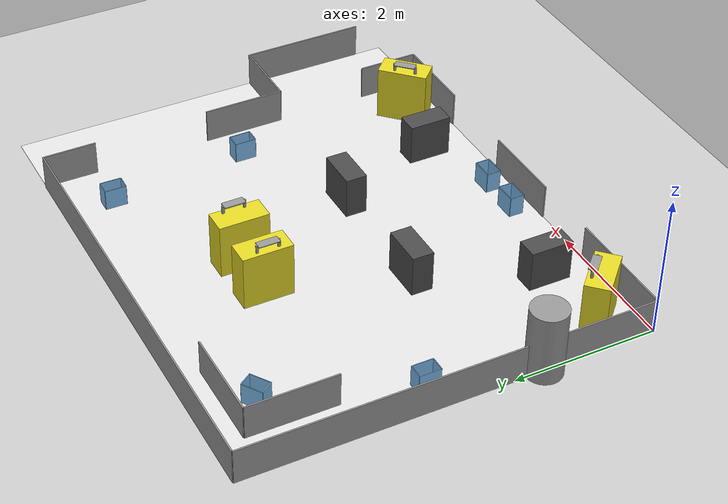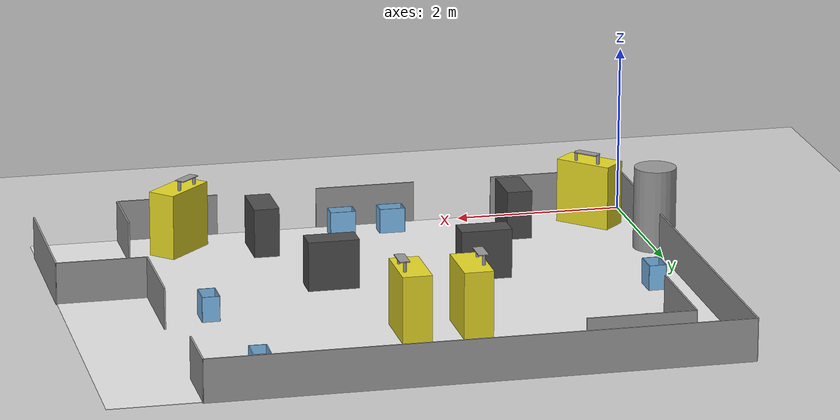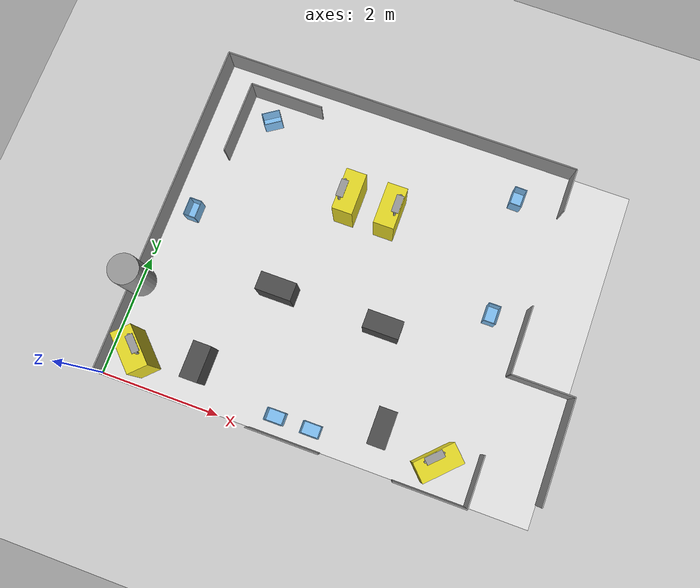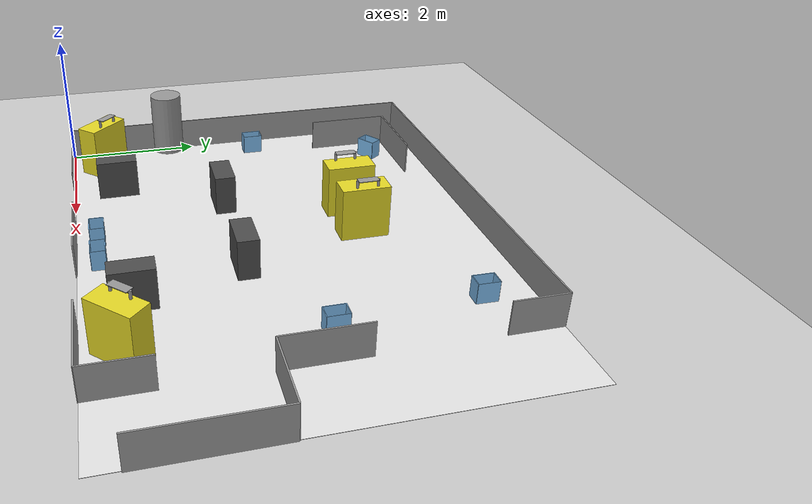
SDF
<sdf version="1.4">
 <world name="LLSF">
  <physics type="ode">
   <max_step_size>0.004</max_step_size>
   <real_time_factor>1</real_time_factor>
   <real_time_update_rate>300</real_time_update_rate>
  </physics>
  <scene><ambient>0.5 0.5 0.5 1.0</ambient><shadows>0</shadows></scene>
  <include><uri>model://ground_plane</uri></include>
  <include><uri>model://sun</uri></include>
  <light name="light" type="point">
   <cast_shadows>false</cast_shadows>
   <pose>0 3 5 0 0 0</pose>
   <diffuse>127 127 127 255</diffuse>
   <specular>25 25 25 255</specular>
   <attenuation>
    <range>20.0</range>
    <linear>0.01</linear>
    <constant>0.7</constant>
    <quadratic>0.00</quadratic>
   </attenuation>
  </light>
  <include><uri>model://halle</uri></include>
  <include><uri>model://shelf_box</uri><pose>3.5 4 0 0 0 -1.57</pose></include>
  <include><uri>model://shelf_box</uri><pose>0.5 0.5 0 0 0 -0.785</pose></include>
  <include><uri>model://shelf_box</uri><pose>2.8 4 0 0 0 1.57</pose></include>
  <include><uri>model://shelf_box</uri><pose>5.5 0.5 0 0 0 0.785</pose></include>
  <include>
   <name>hackathon_goal_box_17</name>
   <uri>model://hackathon_goal_box</uri>
   <pose>3.5 0.2 0 0 0 3.14</pose>
  </include>
  <include>
   <name>hackathon_goal_box_18</name>
   <uri>model://hackathon_goal_box</uri>
   <pose>2.9 0.2 0 0 0 3.14</pose>
  </include>
  <include>
   <name>hackathon_goal_box_33</name>
   <uri>model://hackathon_goal_box</uri>
   <pose>1 5 0 0 0 0.59</pose>
  </include>
  <include>
   <name>hackathon_goal_box_34</name>
   <uri>model://hackathon_goal_box</uri>
   <pose>5.5 5 0 0 0 -1.59</pose>
  </include>
  <include>
   <name>hackathon_goal_box_177</name>
   <uri>model://hackathon_goal_box</uri>
   <pose>5.7 3 0 0 0 -1.57</pose>
  </include>
  <include>
   <name>hackathon_goal_box_178</name>
   <uri>model://hackathon_goal_box</uri>
   <pose>0.3 3 0 0 0 1.57</pose>
  </include>
  <include><name>obstacle_1</name><uri>model://hackathon_obstacle</uri><pose>1.48 0.67 0 0 0 0</pose></include>
  <include><name>obstacle_2</name><uri>model://hackathon_obstacle</uri><pose>4.54 0.7 0 0 0 0</pose></include>
  <include>
   <name>obstacle_3</name>
   <uri>model://hackathon_obstacle</uri>
   <pose>2.22 2.2 0 0 0 1.57</pose>
  </include>
  <include>
   <name>obstacle_4</name>
   <uri>model://hackathon_obstacle</uri>
   <pose>4.02 2.2 0 0 0 1.57</pose>
  </include>
  <plugin name="timesync" filename="libtimesync.so"/>
 </world>
</sdf>

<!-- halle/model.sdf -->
<sdf version="1.5">
  <model name="Carologistics-RCLL-Training">
    <pose>0 0 0 0 0 0</pose>
    <static>true</static>
    <link name="field">
      <pose>3.6 2.85 0.01 0 0 0</pose>
      <collision name="collision">
        <geometry>
          <plane>
            <normal>0 0 1</normal>
            <size>7.20 5.7</size>
          </plane>
        </geometry>
        <surface>
          <friction>
            <ode>
              <mu>100</mu>
              <mu2>50</mu2>
            </ode>
          </friction>
        </surface>
      </collision>
      <visual name="carpet">
        <cast_shadows>false</cast_shadows>
        <geometry>
          <plane>
            <normal>0 0 1</normal>
            <size>7.20 5.7</size>
          </plane>
        </geometry>
        <material>
	  <ambient>0.9 0.9 0.9 0.9</ambient>
	  <diffuse>0.9 0.9 0.9 0.9</diffuse>
        </material>
      </visual>
    </link>
    <link name="pillar">
      <pose>0 1.6 0.5 0 0 0</pose>
      <visual name="pillar-visual">
        <geometry>
          <cylinder>
            <radius>0.25</radius>
            <length>1</length>
          </cylinder>
        </geometry>
        <cast_shadows>false</cast_shadows>
        <material>
	  <script>
	    <uri>file://media/materials/scripts/gazebo.material</uri>
	    <name>Gazebo/Grey</name>
	  </script>
        </material>
      </visual>
      <collision name="pillar-collision">
        <geometry>
          <cylinder>
            <radius>0.25</radius>
            <length>1</length>
          </cylinder>
        </geometry>
      </collision>
    </link>
    <link name="wall_left">
      <pose>0 2.85 0.25 0 0 0</pose>
      <visual name="wall_bottom_middle_left-visual">
        <geometry>
          <box>
            <size>.02 5.7 .5</size>
          </box>
        </geometry>
        <cast_shadows>false</cast_shadows>
        <material>
	  <script>
	    <uri>file://media/materials/scripts/gazebo.material</uri>
	    <name>Gazebo/Grey</name>
	  </script>
        </material>
      </visual>
      <collision name="wall_bottom_middle_left-collision">
        <geometry>
          <box>
            <size>.02 5.7 .5</size>
          </box>
        </geometry>
      </collision>
    </link>
    <link name="wall_top">
      <pose>3.075 5.7 0.25 0 0 0</pose>
      <visual name="wall_top-visual">
        <geometry>
          <box>
            <size>6.15 .02 .5</size>
          </box>
        </geometry>
        <cast_shadows>false</cast_shadows>
        <material>
	  <script>
	    <uri>file://media/materials/scripts/gazebo.material</uri>
	    <name>Gazebo/Grey</name>
	  </script>
        </material>
      </visual>
      <collision name="wall_top-collision">
        <geometry>
          <box>
            <size>6.15 .02 .5</size>
          </box>
        </geometry>
      </collision>
    </link>
    <link name="wall_right_top">
      <pose>6.15 5.325 0.25 0 0 0</pose>
      <visual name="wall_right_top-visual">
        <geometry>
          <box>
            <size>.02 0.75 .5</size>
          </box>
        </geometry>
        <cast_shadows>false</cast_shadows>
        <material>
	  <script>
	    <uri>file://media/materials/scripts/gazebo.material</uri>
	    <name>Gazebo/Grey</name>
	  </script>
        </material>
      </visual>
      <collision name="wall_right_top-collision">
        <geometry>
          <box>
            <size>.02 0.75 .5</size>
          </box>
        </geometry>
      </collision>
    </link>
    <link name="wall_right_middle">
      <pose>6.15 2.725 0.25 0 0 0</pose>
      <visual name="wall_right_middle-visual">
        <geometry>
          <box>
            <size>.02 1.15 .5</size>
          </box>
        </geometry>
        <cast_shadows>false</cast_shadows>
        <material>
	  <script>
	    <uri>file://media/materials/scripts/gazebo.material</uri>
	    <name>Gazebo/Grey</name>
	  </script>
        </material>
      </visual>
      <collision name="wall_right_middle-collision">
        <geometry>
          <box>
            <size>.02 1.15 .5</size>
          </box>
        </geometry>
      </collision>
    </link>
    <link name="wall_right_quer">
      <pose>6.675 2.15 0.25 0 0 0</pose>
      <visual name="wall_right_quer-visual">
        <geometry>
          <box>
            <size>1.05 .02 .5</size>
          </box>
        </geometry>
        <cast_shadows>false</cast_shadows>
        <material>
	  <script>
	    <uri>file://media/materials/scripts/gazebo.material</uri>
	    <name>Gazebo/Grey</name>
	  </script>
        </material>
      </visual>
      <collision name="wall_right_quer-collision">
        <geometry>
          <box>
            <size>1.05 .02 .5</size>
          </box>
        </geometry>
      </collision>
    </link>
    <link name="wall_right_bottom">
      <pose>6.15 0.425 0.25 0 0 0</pose>
      <visual name="wall_right_bottom-visual">
        <geometry>
          <box>
            <size>.02 0.85 .5</size>
          </box>
        </geometry>
        <cast_shadows>false</cast_shadows>
        <material>
	  <script>
	    <uri>file://media/materials/scripts/gazebo.material</uri>
	    <name>Gazebo/Grey</name>
	  </script>
        </material>
      </visual>
      <collision name="wall_right_bottom-collision">
        <geometry>
          <box>
            <size>.02 0.85 .5</size>
          </box>
        </geometry>
      </collision>
    </link>
    <link name="wall_rightest">
      <pose>7.2 1.275 0.25 0 0 0</pose>
      <visual name="wall_rightest-visual">
        <geometry>
          <box>
            <size>.02 1.75 .5</size>
          </box>
        </geometry>
        <cast_shadows>false</cast_shadows>
        <material>
	  <script>
	    <uri>file://media/materials/scripts/gazebo.material</uri>
	    <name>Gazebo/Grey</name>
	  </script>
        </material>
      </visual>
      <collision name="wall_rightest-collision">
        <geometry>
          <box>
            <size>.02 1.75 .5</size>
          </box>
        </geometry>
      </collision>
    </link>
    <link name="wall_bottom_left">
      <pose>0.8 0 0.25 0 0 0</pose>
      <visual name="wall_bottom_left-visual">
        <geometry>
          <box>
            <size>1.6 .02 .5</size>
          </box>
        </geometry>
        <cast_shadows>false</cast_shadows>
        <material>
	  <script>
	    <uri>file://media/materials/scripts/gazebo.material</uri>
	    <name>Gazebo/Grey</name>
	  </script>
        </material>
      </visual>
      <collision name="wall_bottom_left-collision">
        <geometry>
          <box>
            <size>1.6 .02 .5</size>
          </box>
        </geometry>
      </collision>
    </link>
    <link name="wall_bottom_middle">
      <pose>3.15 0 0.25 0 0 0</pose>
      <visual name="wall_bottom_middle-visual">
        <geometry>
          <box>
            <size>1.2 .02 .5</size>
          </box>
        </geometry>
        <cast_shadows>false</cast_shadows>
        <material>
	  <script>
	    <uri>file://media/materials/scripts/gazebo.material</uri>
	    <name>Gazebo/Grey</name>
	  </script>
        </material>
      </visual>
      <collision name="wall_bottom_middle-collision">
        <geometry>
          <box>
            <size>1.2 .02 .5</size>
          </box>
        </geometry>
      </collision>
    </link>
    <link name="wall_bottom_right">
      <pose>5.55 0 0.25 0 0 0</pose>
      <visual name="wall_bottom_right-visual">
        <geometry>
          <box>
            <size>1.2 .02 .5</size>
          </box>
        </geometry>
        <cast_shadows>false</cast_shadows>
        <material>
	  <script>
	    <uri>file://media/materials/scripts/gazebo.material</uri>
	    <name>Gazebo/Grey</name>
	  </script>
        </material>
      </visual>
      <collision name="wall_bottom_right-collision">
        <geometry>
          <box>
            <size>1.2 .02 .5</size>
          </box>
        </geometry>
      </collision>
    </link>
    <link name="wall_inside_left">
      <pose>0.575 4.675 0.25 0 0 0</pose>
      <visual name="wall_inside_left-visual">
        <geometry>
          <box>
            <size>.02 1.25 .5</size>
          </box>
        </geometry>
        <cast_shadows>false</cast_shadows>
        <material>
	  <script>
	    <uri>file://media/materials/scripts/gazebo.material</uri>
	    <name>Gazebo/Grey</name>
	  </script>
        </material>
      </visual>
      <collision name="wall_inside_left-collision">
        <geometry>
          <box>
            <size>.02 1.25 .5</size>
          </box>
        </geometry>
      </collision>
    </link>
    <link name="wall_inside_right">
      <pose>1.2 5.3 0.25 0 0 0</pose>
      <visual name="wall_inside_right-visual">
        <geometry>
          <box>
            <size>1.25 .02 .5</size>
          </box>
        </geometry>
        <cast_shadows>false</cast_shadows>
        <material>
	  <script>
	    <uri>file://media/materials/scripts/gazebo.material</uri>
	    <name>Gazebo/Grey</name>
	  </script>
        </material>
      </visual>
      <collision name="wall_inside_right-collision">
        <geometry>
          <box>
            <size>1.25 .02 .5</size>
          </box>
        </geometry>
      </collision>
    </link>
  </model>
</sdf>

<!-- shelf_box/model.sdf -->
<sdf version="1.4">
  <model name="box_with_shelf">
    <static>true</static>
    <link name="body">
      <pose>0 0 0.01 0 0 0</pose>
      <gravity>true</gravity>
      <inertial>
	<pose>0 0 0.005 0 0 0</pose>
        <mass>50</mass>
        <inertia>
          <ixx>2.45</ixx>
          <ixy>0.0</ixy>
          <ixz>0.0</ixz>
          <iyy>1.53125</iyy>
          <iyz>0.0</iyz>
          <izz>1.53125</izz>
        </inertia>
      </inertial>
      <visual name="body-visual">
	<pose>0 0 0.39 0 0 0</pose>
        <geometry>
	  <box>
	    <size>0.70 0.34 0.78</size>
          </box>
        </geometry>
        <material>
	  <script>
	    <uri>file://media/materials/scripts/gazebo.material</uri>
	    <name>Gazebo/Yellow</name>
	  </script>
        </material>
        <cast_shadows>false</cast_shadows>
      </visual>
      <!-- Collision Elements: -->
      <collision name="collision_box">
	<pose>0 0 0.39 0 0 0</pose>
        <geometry>
	  <box>
	    <size>0.70 0.36 0.78</size>
          </box>
        </geometry>
      </collision>
      <!-- Shelf: -->
      <collision name="collision_shelf">
        <pose>-0.025 0.105 0.895 0 0 0 </pose>
        <geometry>
	  <box>
	    <size>0.295 0.12 0.01</size>
          </box>
        </geometry>
      </collision>
      <visual name="visual_shelf">
        <pose>-0.025 0.105 0.895 0 0 0 </pose>
        <cast_shadows>false</cast_shadows>
        <geometry>
	  <box>
	    <size>0.295 0.12 0.01</size>
          </box>
        </geometry>
        <material>
	  <script>
	    <uri>file://media/materials/scripts/gazebo.material</uri>
	    <name>Gazebo/Grey</name>
	  </script>
        </material>
      </visual>
      <visual name="visual_shelf_pillar1">
        <pose>0.125 0.105 0.84 0 0 0 </pose>
        <cast_shadows>false</cast_shadows>
        <geometry>
          <cylinder>
            <radius>0.02</radius>
	    <length>0.11</length>
          </cylinder>
        </geometry>
        <material>
	  <script>
	    <uri>file://media/materials/scripts/gazebo.material</uri>
	    <name>Gazebo/Grey</name>
	  </script>
        </material>
      </visual>
      <visual name="visual_shelf_pillar2">
        <pose>-0.175 0.105 0.84 0 0 0 </pose>
        <cast_shadows>false</cast_shadows>
        <geometry>
          <cylinder>
            <radius>0.02</radius>
	    <length>0.11</length>
          </cylinder>
        </geometry>
        <material>
	  <script>
	    <uri>file://media/materials/scripts/gazebo.material</uri>
	    <name>Gazebo/Grey</name>
	  </script>
        </material>
      </visual>
    </link>

  </model>
</sdf>

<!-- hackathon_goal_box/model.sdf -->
<sdf version="1.4">
  <model name="hackathon_box">
    <static>true</static>
    <link name="body">
      <pose>0 -0.1 0.01 0 0 -1.57</pose>
      <gravity>true</gravity>
      <visual name="bottom">
	<pose>0 0 0.02 0 0 0</pose>
        <geometry>
	  <box>
	    <size>0.2 0.3 0.04</size>
          </box>
        </geometry>
        <material>
	  <script>
	    <uri>file://media/materials/scripts/gazebo.material</uri>
	    <name>Gazebo/SkyBlue</name>
	  </script>
        </material>
      </visual>
      <collision name="bottom-c">
	<pose>0 0 0.02 0 0 0</pose>
        <geometry>
	  <box>
	    <size>0.2 0.3 0.04</size>
          </box>
        </geometry>
      </collision>
      <visual name="left">
	<pose>-0.1 0 0.15 0 0 0</pose>
        <geometry>
	  <box>
	    <size>0.01 0.3 0.3</size>
          </box>
        </geometry>
        <material>
	  <script>
	    <uri>file://media/materials/scripts/gazebo.material</uri>
	    <name>Gazebo/SkyBlue</name>
	  </script>
        </material>
      </visual>
      <collision name="left-c">
	<pose>-0.1 0 0.14 0 0 0</pose>
        <geometry>
	  <box>
	    <size>0.01 0.3 0.3</size>
          </box>
        </geometry>
      </collision>
      <visual name="back">
	<pose>0 0.15 0.15 0 0 0</pose>
        <geometry>
	  <box>
	    <size>0.2 0.01 0.3</size>
          </box>
        </geometry>
        <material>
	  <script>
	    <uri>file://media/materials/scripts/gazebo.material</uri>
	    <name>Gazebo/SkyBlue</name>
	  </script>
        </material>
      </visual>
      <collision name="back-c">
	<pose>0 0.15 0.15 0 0 0</pose>
        <geometry>
	  <box>
	    <size>0.2 0.01 0.3</size>
          </box>
        </geometry>
      </collision>
      <visual name="right">
	<pose>0.1 0 0.15 0 0 0</pose>
        <geometry>
	  <box>
	    <size>0.01 0.3 0.3</size>
          </box>
        </geometry>
        <material>
	  <script>
	    <uri>file://media/materials/scripts/gazebo.material</uri>
	    <name>Gazebo/SkyBlue</name>
	  </script>
        </material>
      </visual>
      <collision name="right-c">
	<pose>0.1 0 0.15 0 0 0</pose>
        <geometry>
	  <box>
	    <size>0.01 0.3 0.3</size>
          </box>
        </geometry>
      </collision>
      <visual name="front">
	<pose>0 -0.15 0.15 0 0 0</pose>
        <geometry>
	  <box>
	    <size>0.2 0.01 0.3</size>
          </box>
        </geometry>
        <material>
	  <script>
	    <uri>file://media/materials/scripts/gazebo.material</uri>
	    <name>Gazebo/SkyBlue</name>
	  </script>
        </material>
      </visual>
      <collision name="front-c">
	<pose>0 -0.15 0.15 0 0 0</pose>
        <geometry>
	  <box>
	    <size>0.2 0.01 0.3</size>
          </box>
        </geometry>
      </collision>
    </link>
  </model>
</sdf>

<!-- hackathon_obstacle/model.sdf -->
<sdf version="1.4">
  <model name="hackathon_obstacle">
    <static>true</static>
    <link name="body">
      <pose>0 0 0.3 0 0 0</pose>
      <gravity>true</gravity>
      <visual name="bottom">
        <geometry>
	  <box>
	    <size>0.3 0.6 0.6</size>
          </box>
        </geometry>
        <material>
	  <script>
	    <uri>file://media/materials/scripts/gazebo.material</uri>
	    <name>Gazebo/Road</name>
	  </script>
        </material>
      </visual>
      <collision name="bottom-c">
        <geometry>
	  <box>
	    <size>0.3 0.6 0.6</size>
          </box>
        </geometry>
      </collision>
    </link>
  </model>
</sdf>
